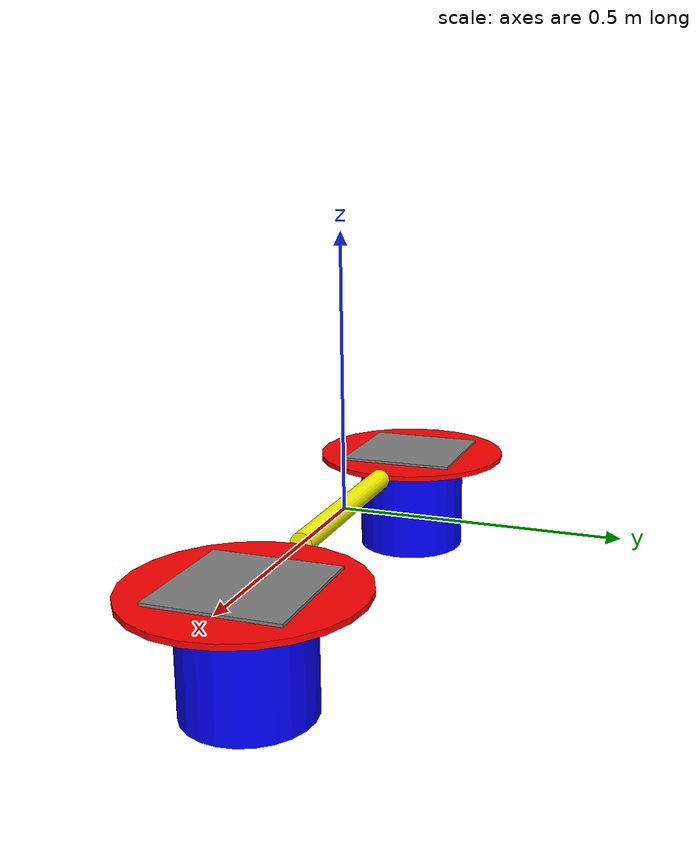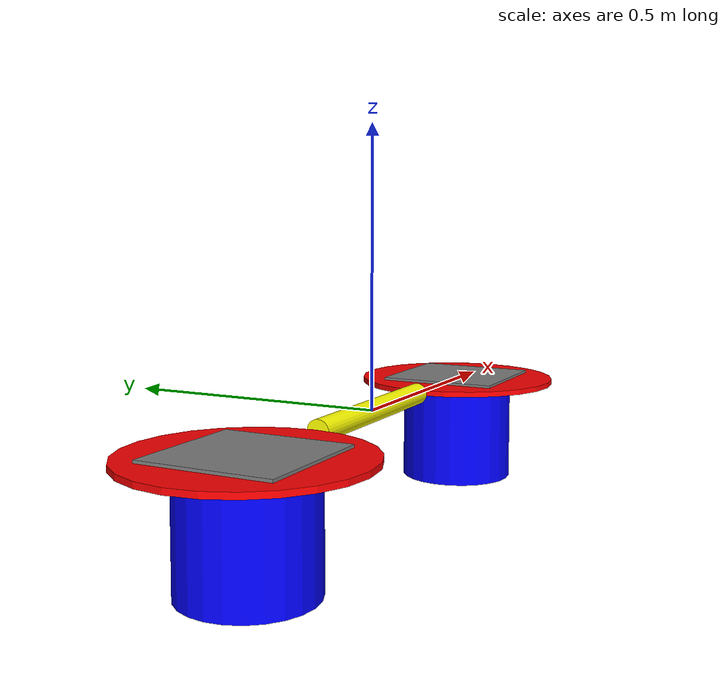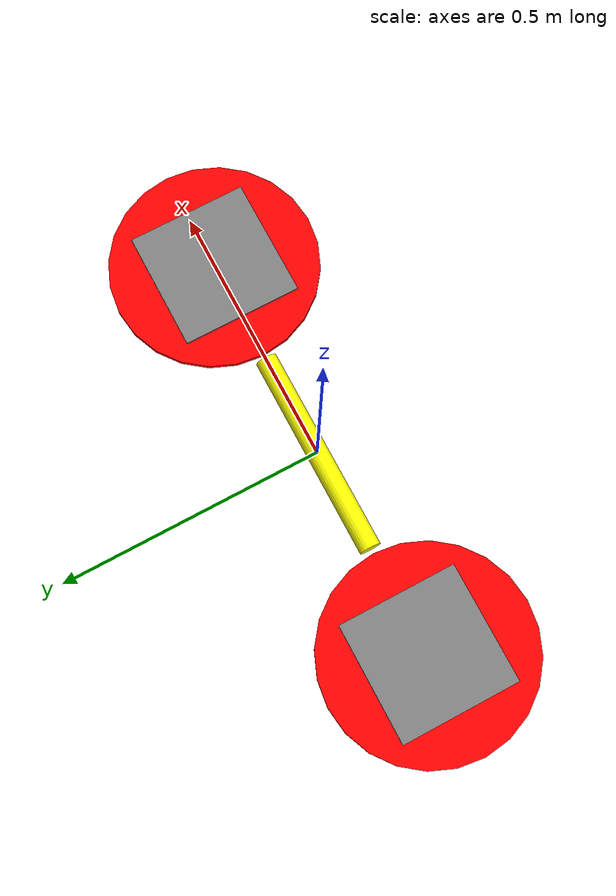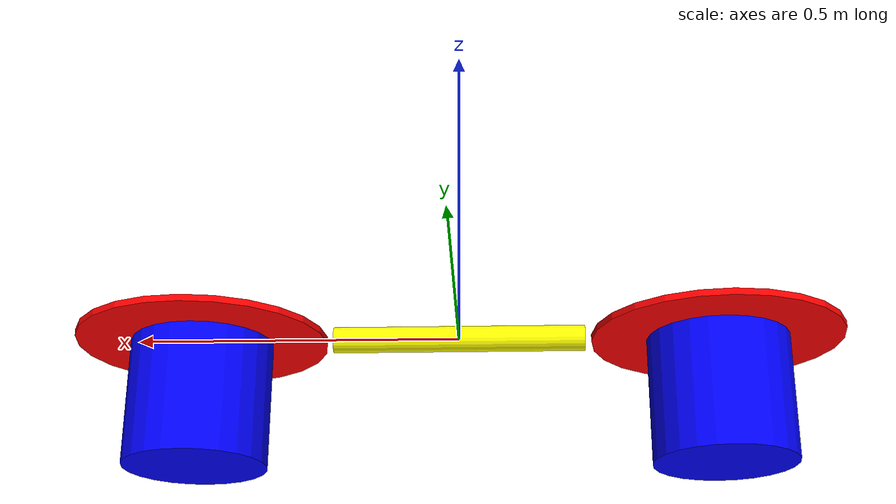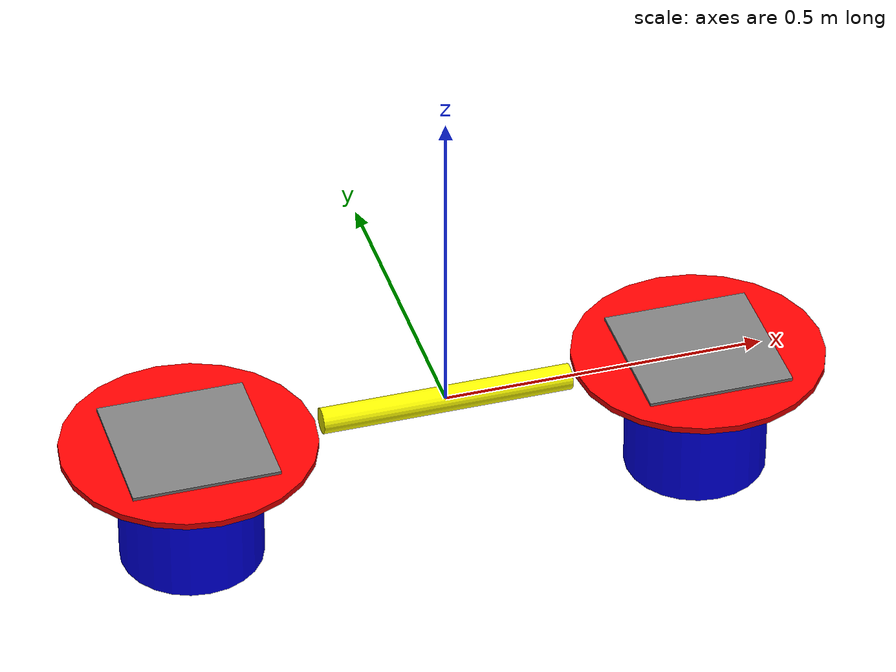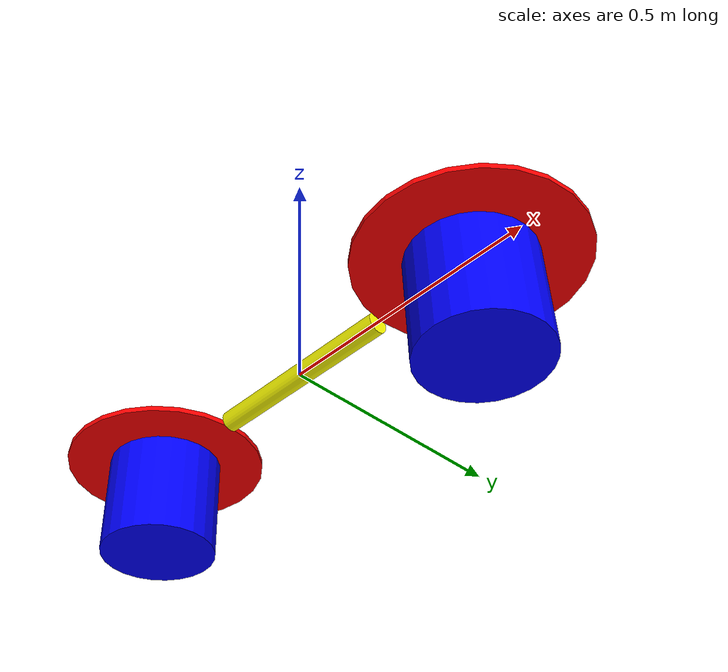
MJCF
<!-- The Lappa robot -->
<mujoco model="Lappa">
	<worldbody>
		<body name="root">
			<geom name="core" type="cylinder" fromto="-.1 0 0 .1 0 0" size=".005" mass=".0001" />
			<body name="torsion_bar">
				<geom name="spring" type="cylinder" size="0.02 .195" euler="0 90 0" rgba="1 1 0 1" mass="0.01" />
				<joint name="h3" type="hinge" axis="1 0 0" limited="true" range="-90 90" stiffness="5" damping="10" />
			</body>
			<freejoint name="root_joint" />
			<body name="a_module" pos=".4 0 0">
				<geom name="a_house" type="cylinder" size=".195 .005" rgba="1 0 0 1" mass="0.2" />
				<geom name="a_lock" type="box" size=".113 .113 .005" pos="0 0 .005" mass="0" />
				<joint name="a_h2" type="hinge" axis="0 1 0" pos="-.195 0 0" limited="true" range="-45 45" />
				<body name="a_chamber" pos="0 0 -.1">
					<joint name="a_h1" type="hinge" axis="0 0 1" />
					<geom name="a_chamber" type="cylinder" size=".110 .100" rgba="0 0 1 1" mass="0.45" />
                    <site name="a_propeller" pos="0 0 -.05" />
				</body>
			</body>
			<body name="b_module" pos="-.4 0 0">
				<geom name="b_house" type="cylinder" size=".195 .005" rgba="1 0 0 1" mass="0.2" />
				<geom name="b_lock" type="box" size=".113 .113 .005" pos="0 0 .005" mass="0" />
				<joint name="b_h2" type="hinge" axis="0 1 0" pos=".195 0 0" limited="true" range="-45 45" />
				<body name="b_chamber" pos="0 0 -.1">
					<joint name="b_h1" type="hinge" axis="0 0 1" />
					<geom name="b_chamber" type="cylinder" size=".110 .100" rgba="0 0 1 1" mass="0.45" />
                    <site name="b_propeller" pos="0 0 -.05" />
				</body>
			</body>
		</body>
	</worldbody>
	<equality>

	</equality>
	<actuator>
        <motor name="a_thrust" site="a_propeller" ctrllimited="true" ctrlrange="-1. 1." gear="0 0 100"  />
        <motor name="b_thrust" site="b_propeller" ctrllimited="true" ctrlrange="-1. 1." gear="0 0 100"  />
		<motor name="h3" joint="h3" gear="10" />
        <motor name="a_h1" joint="a_h1" gear="1" />
        <motor name="b_h1" joint="b_h1" gear="1" />
	</actuator>
</mujoco>
